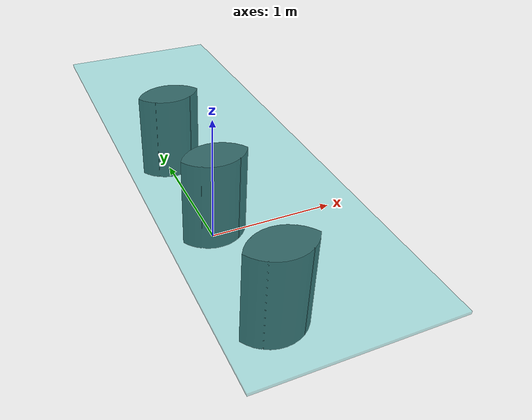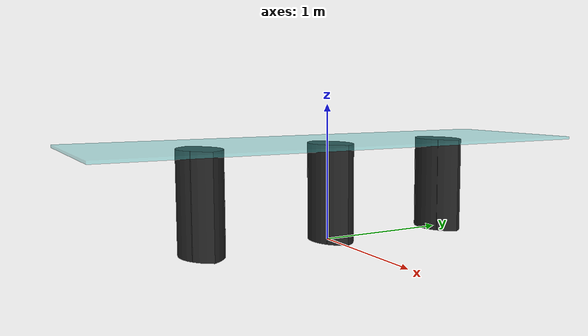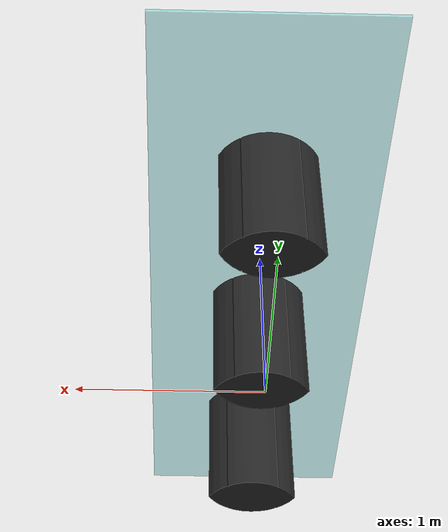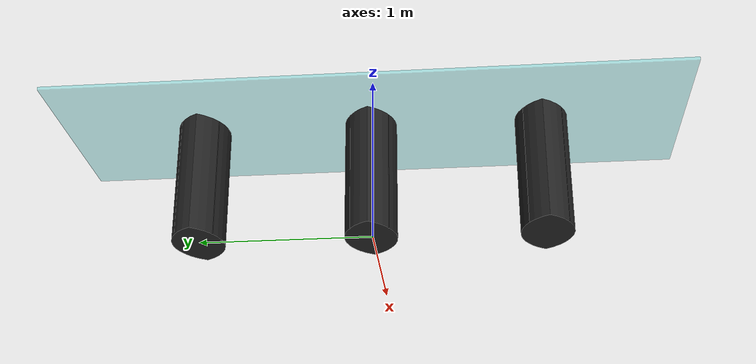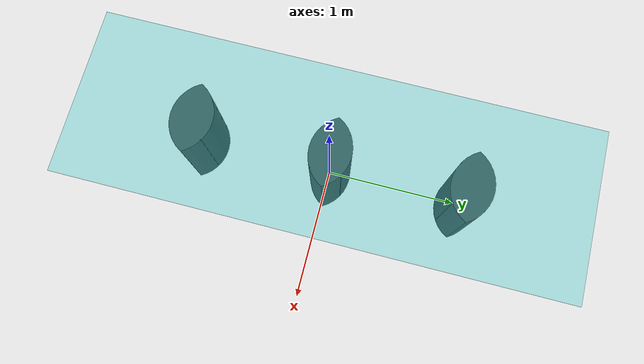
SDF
<?xml version='1.0'?>
<sdf version='1.6'>
  <model name='table_conference_3'>
    <link name='link_6'>
       <visual name='visual'>
        <pose frame=''>0 0 0 0 -0 0</pose>
        <geometry>
          <mesh>
            <uri>model://table_conference_3/meshes/leg.dae</uri>
            <scale>1 1 1</scale>
          </mesh>
        </geometry>
	<material>
          <script>
            <uri>model://table_conference_3/materials/scripts</uri>
            <uri>model://table_conference_3/materials/textures</uri>
            <name>table_conf_3</name>
          </script>
        </material>
        <cast_shadows>1</cast_shadows>
        <transparency>0</transparency>
      </visual>
      <collision name='collision'>
        <laser_retro>0</laser_retro>
        <max_contacts>10</max_contacts>
        <pose frame=''>0 0 0 0 -0 0</pose>
        <geometry>
          <mesh>
            <uri>model://table_conference_3/meshes/leg.dae</uri>
            <scale>1 1 1</scale>
          </mesh>
        </geometry>
      </collision>
    </link>
    <link name='link_7'>
       <visual name='visual'>
        <pose frame=''>0 0 0 0 -0 0</pose>
        <geometry>
          <mesh>
            <uri>model://table_conference_3/meshes/top.dae</uri>
            <scale>1 1 1</scale>
          </mesh>
        </geometry>
          <material>
          <lighting>1</lighting>
           <ambient>0.278 0.776 0.776 1</ambient>
          <diffuse>0.278 0.776 0.776 1</diffuse>
          <specular>0.01 0.01 0.01 1</specular>
          <emissive>0 0 0 1</emissive>
          <shader type='vertex'>
            <normal_map>__default__</normal_map>
          </shader>
        </material>
        <cast_shadows>1</cast_shadows>
        <transparency>0.6</transparency>
      </visual>
      <collision name='collision'>
        <laser_retro>0</laser_retro>
        <max_contacts>10</max_contacts>
        <pose frame=''>0 0 0 0 -0 0</pose>
        <geometry>
          <mesh>
            <uri>model://table_conference_3/meshes/top.dae</uri>
            <scale>1 1 1</scale>
          </mesh>
        </geometry>
       </collision>
    </link>
    <link name='link_8'>
      <pose frame=''>0 1 0 0 -0 0</pose>
     <visual name='visual'>
        <pose frame=''>0 0 0 0 -0 0</pose>
        <geometry>
          <mesh>
            <uri>model://table_conference_3/meshes/leg.dae</uri>
            <scale>1 1 1</scale>
          </mesh>
        </geometry>
       	<material>
          <script>
            <uri>model://table_conference_3/materials/scripts</uri>
            <uri>model://table_conference_3/materials/textures</uri>
            <name>table_conf_3</name>
          </script>
        </material>
        <cast_shadows>1</cast_shadows>
        <transparency>0</transparency>
      </visual>
      <collision name='collision'>
        <laser_retro>0</laser_retro>
        <max_contacts>10</max_contacts>
        <pose frame=''>0 0 0 0 -0 0</pose>
        <geometry>
          <mesh>
            <uri>model://table_conference_3/meshes/leg.dae</uri>
            <scale>1 1 1</scale>
          </mesh>
        </geometry>
       </collision>
    </link>
    <link name='link_9'>
      <pose frame=''>0 -1 0 0 -0 0</pose>
       <visual name='visual'>
        <pose frame=''>0 0 0 0 -0 0</pose>
        <geometry>
          <mesh>
            <uri>model://table_conference_3/meshes/leg.dae</uri>
            <scale>1 1 1</scale>
          </mesh>
        </geometry>
        	<material>
          <script>
            <uri>model://table_conference_3/materials/scripts</uri>
            <uri>model://table_conference_3/materials/textures</uri>
            <name>table_conf_3</name>
          </script>
        </material>
        <cast_shadows>1</cast_shadows>
        <transparency>0</transparency>
      </visual>
      <collision name='collision'>
        <laser_retro>0</laser_retro>
        <max_contacts>10</max_contacts>
        <pose frame=''>0 0 0 0 -0 0</pose>
        <geometry>
          <mesh>
            <uri>model://table_conference_3/meshes/leg.dae</uri>
            <scale>1 1 1</scale>
          </mesh>
        </geometry>
      </collision>
    </link>
    <static>1</static>
    <allow_auto_disable>1</allow_auto_disable>
  </model>
</sdf>
